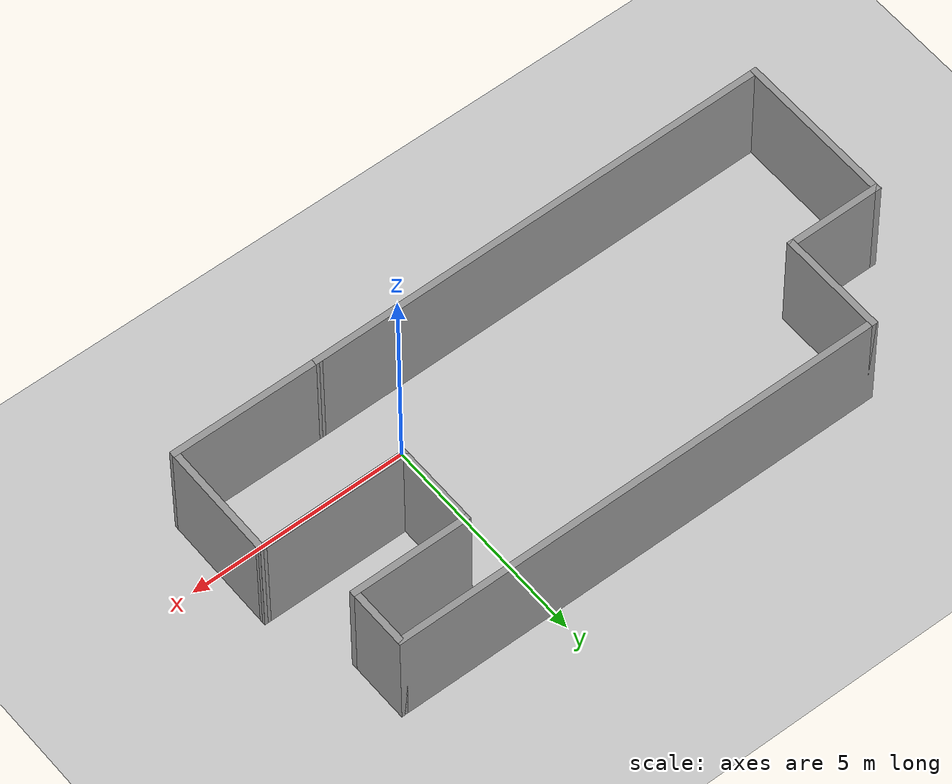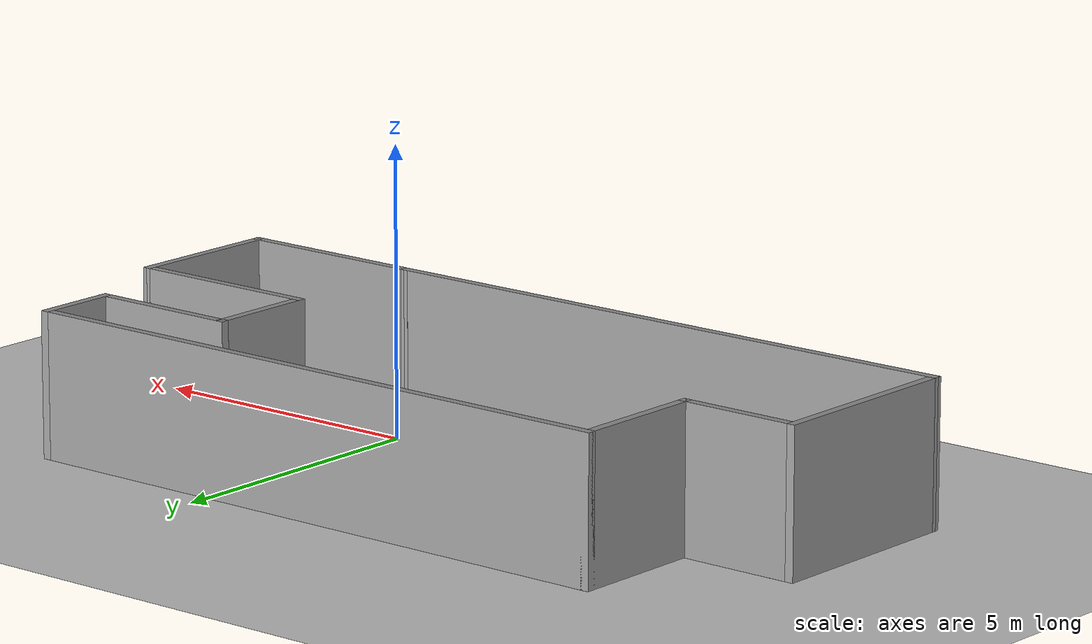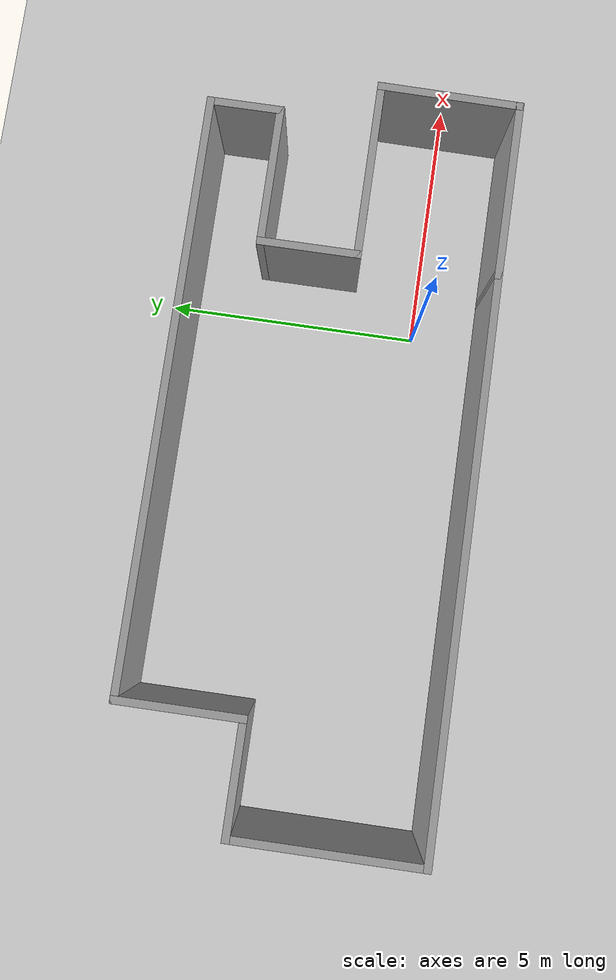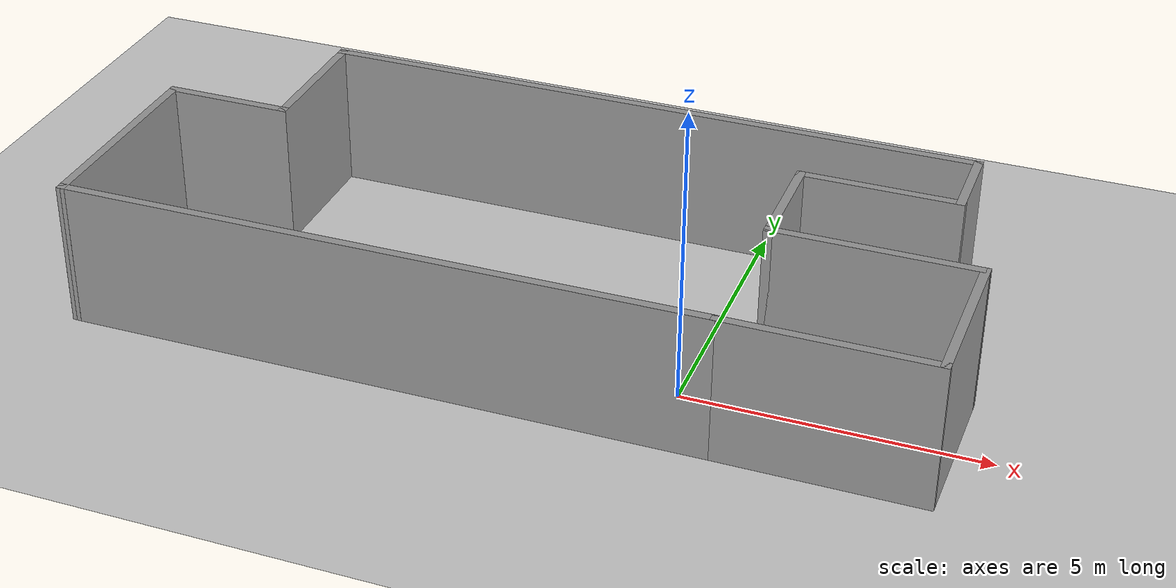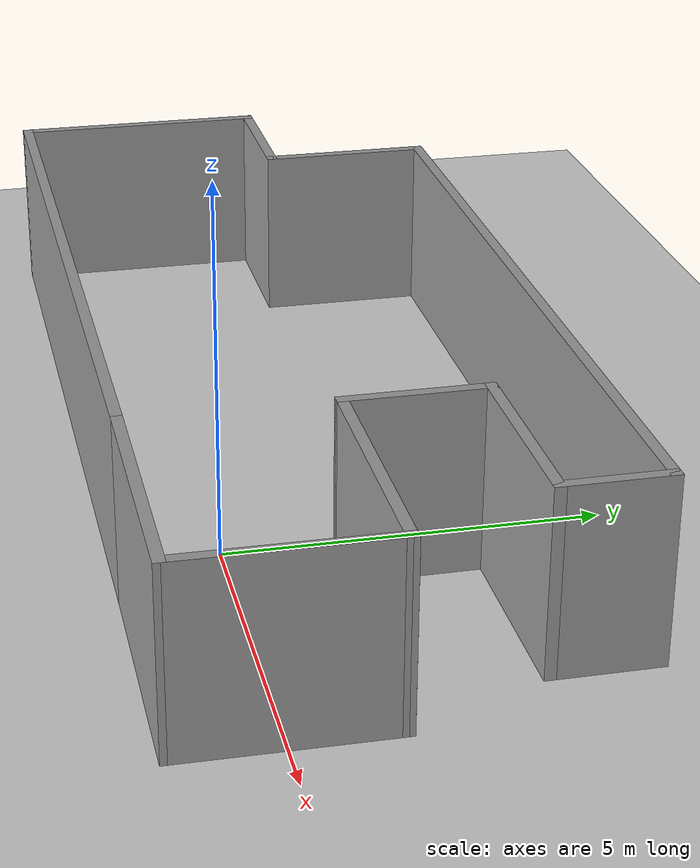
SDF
<sdf version="1.7">
 <world name="default">
  <light name="sun" type="directional">
   <pose>0 0 10 0 -0 0</pose>
   <diffuse>0.8 0.8 0.8 1</diffuse>
   <specular>0.2 0.2 0.2 1</specular>
   <attenuation>
    <range>1000</range>
    <constant>0.9</constant>
    <linear>0.01</linear>
    <quadratic>0.001</quadratic>
   </attenuation>
   <direction>-0.5 0.1 -0.9</direction>
   <spot><inner_angle>0</inner_angle><outer_angle>0</outer_angle><falloff>0</falloff></spot>
  </light>
  <model name="ground_plane">
   <static>1</static>
   <link name="link">
    <collision name="collision">
     <geometry><plane><normal>0 0 1</normal><size>100 100</size></plane></geometry>
     <surface>
      <contact><collide_bitmask>65535</collide_bitmask></contact>
      <friction><ode><mu>100</mu><mu2>50</mu2></ode></friction>
     </surface>
    </collision>
    <visual name="visual">
     <cast_shadows>0</cast_shadows>
     <geometry><plane><normal>0 0 1</normal><size>100 100</size></plane></geometry>
     <material>
      <script><uri>file://media/materials/scripts/gazebo.material</uri><name>Gazebo/Grey</name></script>
     </material>
    </visual>
   </link>
  </model>
  <gravity>0 0 -9.8</gravity>
  <magnetic_field>6e-06 2.3e-05 -4.2e-05</magnetic_field>
  <atmosphere type="adiabatic"/>
  <physics type="ode">
   <max_step_size>0.001</max_step_size>
   <real_time_factor>1</real_time_factor>
   <real_time_update_rate>1000</real_time_update_rate>
  </physics>
  <scene><ambient>0.4 0.4 0.4 1</ambient><background>0.7 0.7 0.7 1</background><shadows>1</shadows></scene>
  <spherical_coordinates>
   <surface_model>EARTH_WGS84</surface_model>
   <latitude_deg>0</latitude_deg>
   <longitude_deg>0</longitude_deg>
   <elevation>0</elevation>
   <heading_deg>0</heading_deg>
  </spherical_coordinates>
  <model name="pokoj">
   <pose>-2.79605 1.56883 0 0 -0 0</pose>
   <link name="Wall_0">
    <collision name="Wall_0_Collision">
     <geometry><box><size>10.9738 0.15 2.5</size></box></geometry>
     <pose>0 0 1.25 0 -0 0</pose>
    </collision>
    <visual name="Wall_0_Visual">
     <pose>0 0 1.25 0 -0 0</pose>
     <geometry><box><size>10.9738 0.15 2.5</size></box></geometry>
     <material>
      <script><uri>file://media/materials/scripts/gazebo.material</uri><name>Gazebo/Grey</name></script>
      <ambient>1 1 1 1</ambient>
     </material>
     <meta><layer>0</layer></meta>
    </visual>
    <pose>-1.68835 -2.93879 0 0 -0 -3.13495</pose>
   </link>
   <link name="Wall_10">
    <collision name="Wall_10_Collision">
     <geometry><box><size>3.5 0.15 2.5</size></box></geometry>
     <pose>0 0 1.25 0 -0 0</pose>
    </collision>
    <visual name="Wall_10_Visual">
     <pose>0 0 1.25 0 -0 0</pose>
     <geometry><box><size>3.5 0.15 2.5</size></box></geometry>
     <material>
      <script><uri>file://media/materials/scripts/gazebo.material</uri><name>Gazebo/Grey</name></script>
      <ambient>1 1 1 1</ambient>
     </material>
     <meta><layer>0</layer></meta>
    </visual>
    <pose>5.42488 -0.224752 0 0 -0 0</pose>
   </link>
   <link name="Wall_11">
    <collision name="Wall_11_Collision">
     <geometry><box><size>2.81498 0.15 2.5</size></box></geometry>
     <pose>0 0 1.25 0 -0 0</pose>
    </collision>
    <visual name="Wall_11_Visual">
     <pose>0 0 1.25 0 -0 0</pose>
     <geometry><box><size>2.81498 0.15 2.5</size></box></geometry>
     <material>
      <script><uri>file://media/materials/scripts/gazebo.material</uri><name>Gazebo/Grey</name></script>
      <ambient>1 1 1 1</ambient>
     </material>
     <meta><layer>0</layer></meta>
    </visual>
    <pose>7.08665 -1.55718 0 0 -0 -1.58072</pose>
   </link>
   <link name="Wall_12">
    <collision name="Wall_12_Collision">
     <geometry><box><size>3.5 0.15 2.5</size></box></geometry>
     <pose>0 0 1.25 0 -0 0</pose>
    </collision>
    <visual name="Wall_12_Visual">
     <pose>0 0 1.25 0 -0 0</pose>
     <geometry><box><size>3.5 0.15 2.5</size></box></geometry>
     <material>
      <script><uri>file://media/materials/scripts/gazebo.material</uri><name>Gazebo/Grey</name></script>
      <ambient>1 1 1 1</ambient>
     </material>
     <meta><layer>0</layer></meta>
    </visual>
    <pose>5.39843 -2.90283 0 0 -0 3.14159</pose>
   </link>
   <link name="Wall_2">
    <collision name="Wall_2_Collision">
     <geometry><box><size>3.75 0.15 2.5</size></box></geometry>
     <pose>0 0 1.25 0 -0 0</pose>
    </collision>
    <visual name="Wall_2_Visual">
     <pose>0 0 1.25 0 -0 0</pose>
     <geometry><box><size>3.75 0.15 2.5</size></box></geometry>
     <material>
      <script><uri>file://media/materials/scripts/gazebo.material</uri><name>Gazebo/Grey</name></script>
      <ambient>1 1 1 1</ambient>
     </material>
     <meta><layer>0</layer></meta>
    </visual>
    <pose>-7.10012 -1.17475 0 0 -0 1.5708</pose>
   </link>
   <link name="Wall_3">
    <collision name="Wall_3_Collision">
     <geometry><box><size>2.25 0.15 2.5</size></box></geometry>
     <pose>0 0 1.25 0 -0 0</pose>
    </collision>
    <visual name="Wall_3_Visual">
     <pose>0 0 1.25 0 -0 0</pose>
     <geometry><box><size>2.25 0.15 2.5</size></box></geometry>
     <material>
      <script><uri>file://media/materials/scripts/gazebo.material</uri><name>Gazebo/Grey</name></script>
      <ambient>1 1 1 1</ambient>
     </material>
     <meta><layer>0</layer></meta>
    </visual>
    <pose>-6.05012 0.625248 0 0 -0 0</pose>
   </link>
   <link name="Wall_5">
    <collision name="Wall_5_Collision">
     <geometry><box><size>2.5 0.15 2.5</size></box></geometry>
     <pose>0 0 1.25 0 -0 0</pose>
    </collision>
    <visual name="Wall_5_Visual">
     <pose>0 0 1.25 0 -0 0</pose>
     <geometry><box><size>2.5 0.15 2.5</size></box></geometry>
     <material>
      <script><uri>file://media/materials/scripts/gazebo.material</uri><name>Gazebo/Grey</name></script>
      <ambient>1 1 1 1</ambient>
     </material>
     <meta><layer>0</layer></meta>
    </visual>
    <pose>-5.00012 1.80025 0 0 -0 1.5708</pose>
   </link>
   <link name="Wall_6">
    <collision name="Wall_6_Collision">
     <geometry><box><size>11.5 0.15 2.5</size></box></geometry>
     <pose>0 0 1.25 0 -0 0</pose>
    </collision>
    <visual name="Wall_6_Visual">
     <pose>0 0 1.25 0 -0 0</pose>
     <geometry><box><size>11.5 0.15 2.5</size></box></geometry>
     <material>
      <script><uri>file://media/materials/scripts/gazebo.material</uri><name>Gazebo/Grey</name></script>
      <ambient>1 1 1 1</ambient>
     </material>
     <meta><layer>0</layer></meta>
    </visual>
    <pose>0.674879 2.97525 0 0 -0 0</pose>
   </link>
   <link name="Wall_7">
    <collision name="Wall_7_Collision">
     <geometry><box><size>1.5 0.15 2.5</size></box></geometry>
     <pose>0 0 1.25 0 -0 0</pose>
    </collision>
    <visual name="Wall_7_Visual">
     <pose>0 0 1.25 0 -0 0</pose>
     <geometry><box><size>1.5 0.15 2.5</size></box></geometry>
     <material>
      <script><uri>file://media/materials/scripts/gazebo.material</uri><name>Gazebo/Grey</name></script>
      <ambient>1 1 1 1</ambient>
     </material>
     <meta><layer>0</layer></meta>
    </visual>
    <pose>6.34988 2.30025 0 0 -0 -1.5708</pose>
   </link>
   <link name="Wall_8">
    <collision name="Wall_8_Collision">
     <geometry><box><size>2.75 0.15 2.5</size></box></geometry>
     <pose>0 0 1.25 0 -0 0</pose>
    </collision>
    <visual name="Wall_8_Visual">
     <pose>0 0 1.25 0 -0 0</pose>
     <geometry><box><size>2.75 0.15 2.5</size></box></geometry>
     <material>
      <script><uri>file://media/materials/scripts/gazebo.material</uri><name>Gazebo/Grey</name></script>
      <ambient>1 1 1 1</ambient>
     </material>
     <meta><layer>0</layer></meta>
    </visual>
    <pose>5.04988 1.62525 0 0 -0 3.14159</pose>
   </link>
   <link name="Wall_9">
    <collision name="Wall_9_Collision">
     <geometry><box><size>2 0.15 2.5</size></box></geometry>
     <pose>0 0 1.25 0 -0 0</pose>
    </collision>
    <visual name="Wall_9_Visual">
     <pose>0 0 1.25 0 -0 0</pose>
     <geometry><box><size>2 0.15 2.5</size></box></geometry>
     <material>
      <script><uri>file://media/materials/scripts/gazebo.material</uri><name>Gazebo/Grey</name></script>
      <ambient>1 1 1 1</ambient>
     </material>
     <meta><layer>0</layer></meta>
    </visual>
    <pose>3.74988 0.700248 0 0 -0 -1.5708</pose>
   </link>
   <static>1</static>
  </model>
 </world>
</sdf>
